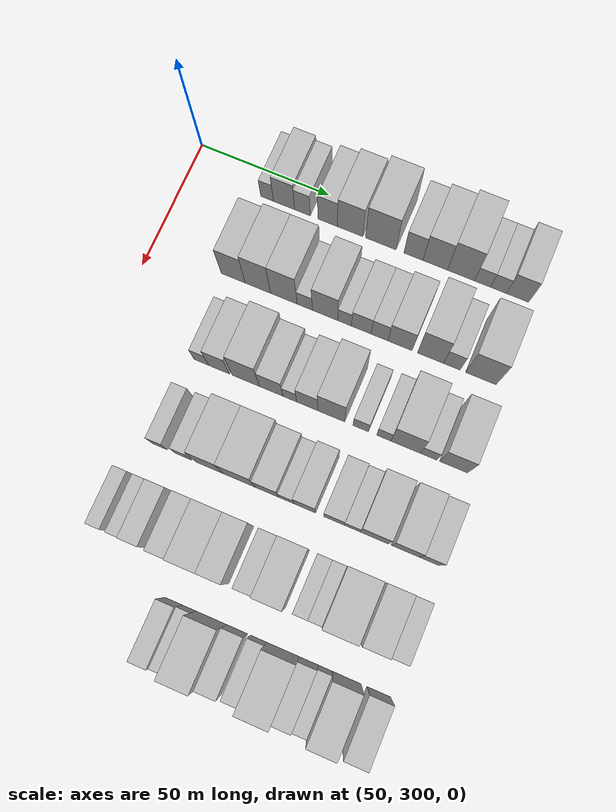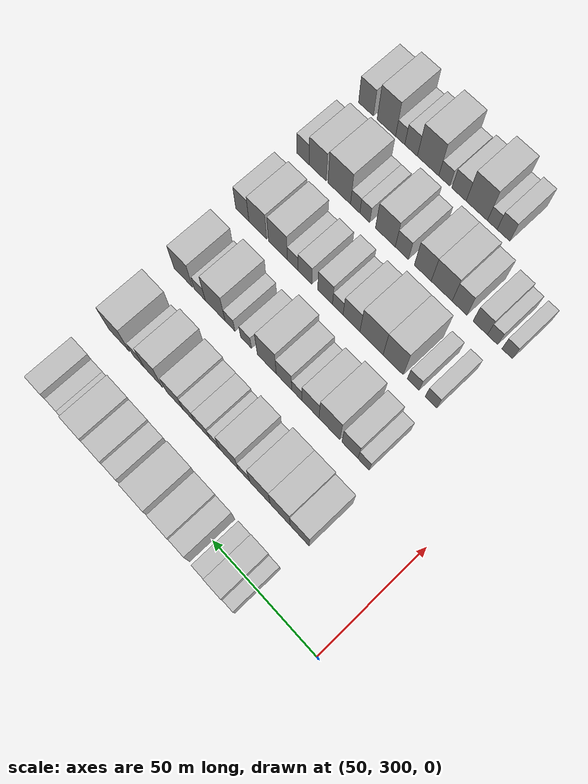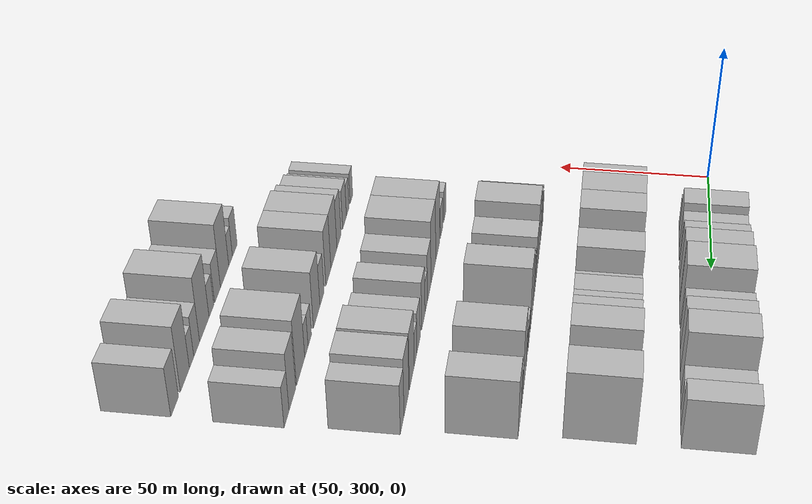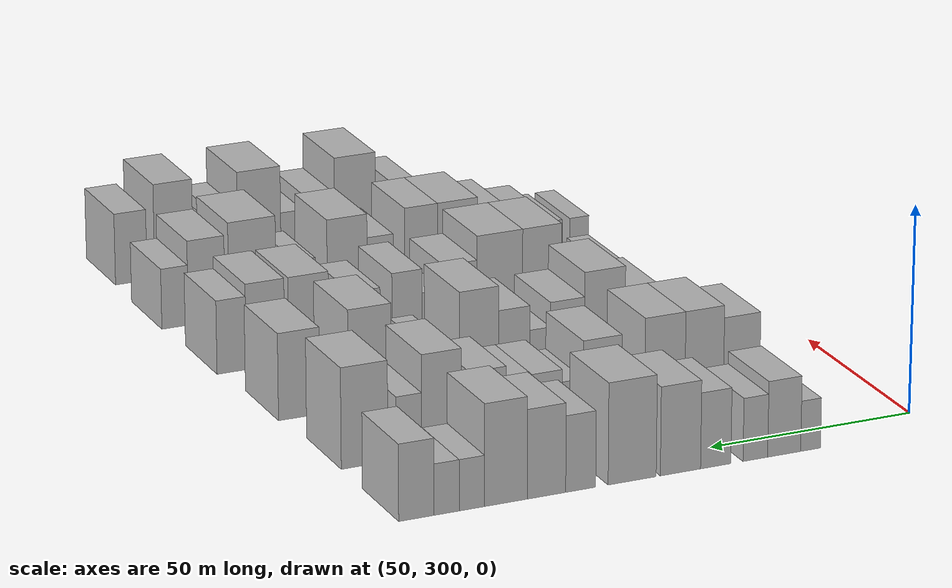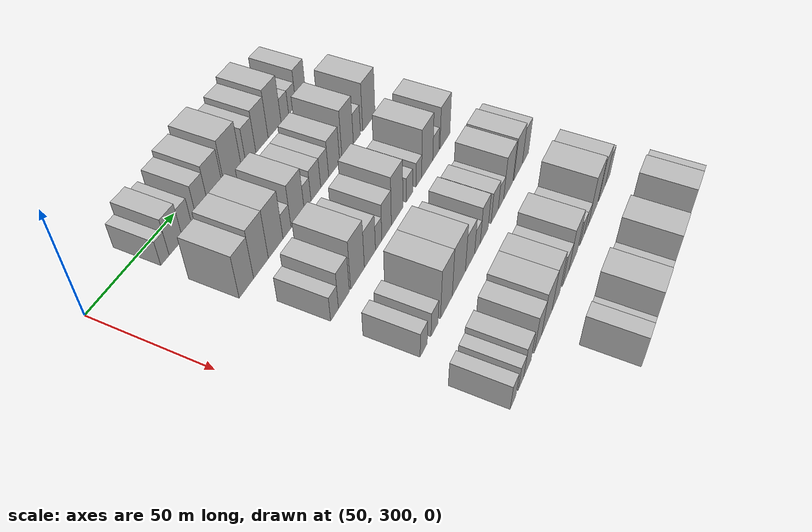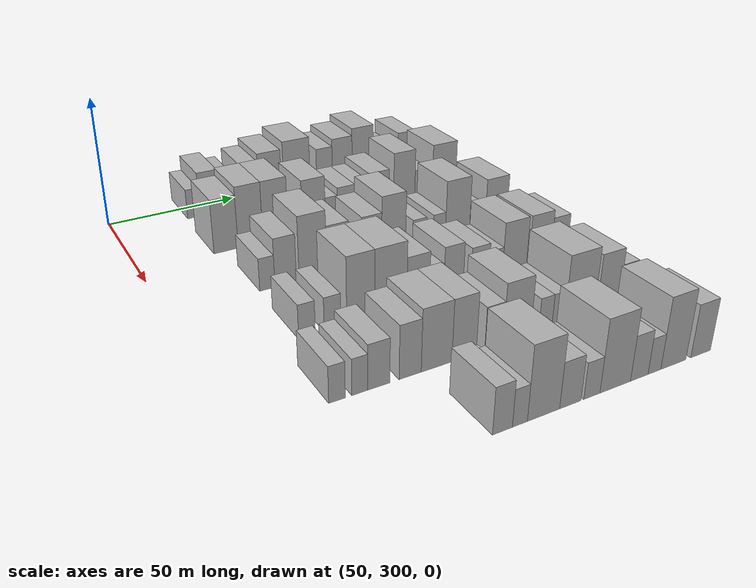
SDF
<sdf version="1.6">
 <world name="default">
  <model name="building_97">
   <static>1</static>
   <pose>50.0000 330.2632 0 0.000000 0.000000 0.000000</pose>
   <link name="link">
    <pose>0 0 6.00 0 0 0</pose>
    <collision name="collision"><geometry><box><size>20.0000 4.9394 12.0000</size></box></geometry></collision>
    <visual name="visual">
     <cast_shadows>0</cast_shadows>
     <geometry><box><size>20.0000 4.9394 12.0000</size></box></geometry>
     <material>
      <script>
       <uri>model://HANNAS_wall/materials/scripts</uri>
       <uri>model://HANNAS_wall/materials/textures</uri>
       <name>vrc/HANNAS_wall</name>
      </script>
     </material>
    </visual>
   </link>
  </model>
  <model name="building_98">
   <static>1</static>
   <pose>50.0000 336.8255 0 0.000000 0.000000 0.000000</pose>
   <link name="link">
    <pose>0 0 9.00 0 0 0</pose>
    <collision name="collision"><geometry><box><size>20.0000 8.1850 18.0000</size></box></geometry></collision>
    <visual name="visual">
     <cast_shadows>0</cast_shadows>
     <geometry><box><size>20.0000 8.1850 18.0000</size></box></geometry>
     <material>
      <script>
       <uri>model://HANNAS_wall/materials/scripts</uri>
       <uri>model://HANNAS_wall/materials/textures</uri>
       <name>vrc/HANNAS_wall</name>
      </script>
     </material>
    </visual>
   </link>
  </model>
  <model name="building_99">
   <static>1</static>
   <pose>50.0000 343.9615 0 0.000000 0.000000 0.000000</pose>
   <link name="link">
    <pose>0 0 7.50 0 0 0</pose>
    <collision name="collision"><geometry><box><size>20.0000 6.0871 15.0000</size></box></geometry></collision>
    <visual name="visual">
     <cast_shadows>0</cast_shadows>
     <geometry><box><size>20.0000 6.0871 15.0000</size></box></geometry>
     <material>
      <script>
       <uri>model://HANNAS_wall/materials/scripts</uri>
       <uri>model://HANNAS_wall/materials/textures</uri>
       <name>vrc/HANNAS_wall</name>
      </script>
     </material>
    </visual>
   </link>
  </model>
  <model name="building_100">
   <static>1</static>
   <pose>50.0000 353.7183 0 0.000000 0.000000 0.000000</pose>
   <link name="link">
    <pose>0 0 9.00 0 0 0</pose>
    <collision name="collision"><geometry><box><size>20.0000 7.4264 18.0000</size></box></geometry></collision>
    <visual name="visual">
     <cast_shadows>0</cast_shadows>
     <geometry><box><size>20.0000 7.4264 18.0000</size></box></geometry>
     <material>
      <script>
       <uri>model://HANNAS_wall/materials/scripts</uri>
       <uri>model://HANNAS_wall/materials/textures</uri>
       <name>vrc/HANNAS_wall</name>
      </script>
     </material>
    </visual>
   </link>
  </model>
  <model name="building_101">
   <static>1</static>
   <pose>50.0000 362.3432 0 0.000000 0.000000 0.000000</pose>
   <link name="link">
    <pose>0 0 10.50 0 0 0</pose>
    <collision name="collision"><geometry><box><size>20.0000 9.8235 21.0000</size></box></geometry></collision>
    <visual name="visual">
     <cast_shadows>0</cast_shadows>
     <geometry><box><size>20.0000 9.8235 21.0000</size></box></geometry>
     <material>
      <script>
       <uri>model://HANNAS_wall/materials/scripts</uri>
       <uri>model://HANNAS_wall/materials/textures</uri>
       <name>vrc/HANNAS_wall</name>
      </script>
     </material>
    </visual>
   </link>
  </model>
  <model name="building_102">
   <static>1</static>
   <pose>50.0000 374.0817 0 0.000000 0.000000 0.000000</pose>
   <link name="link">
    <pose>0 0 12.00 0 0 0</pose>
    <collision name="collision"><geometry><box><size>20.0000 11.6535 24.0000</size></box></geometry></collision>
    <visual name="visual">
     <cast_shadows>0</cast_shadows>
     <geometry><box><size>20.0000 11.6535 24.0000</size></box></geometry>
     <material>
      <script>
       <uri>model://HANNAS_wall/materials/scripts</uri>
       <uri>model://HANNAS_wall/materials/textures</uri>
       <name>vrc/HANNAS_wall</name>
      </script>
     </material>
    </visual>
   </link>
  </model>
  <model name="building_103">
   <static>1</static>
   <pose>50.0000 386.5109 0 0.000000 0.000000 0.000000</pose>
   <link name="link">
    <pose>0 0 9.00 0 0 0</pose>
    <collision name="collision"><geometry><box><size>20.0000 7.2047 18.0000</size></box></geometry></collision>
    <visual name="visual">
     <cast_shadows>0</cast_shadows>
     <geometry><box><size>20.0000 7.2047 18.0000</size></box></geometry>
     <material>
      <script>
       <uri>model://HANNAS_wall/materials/scripts</uri>
       <uri>model://HANNAS_wall/materials/textures</uri>
       <name>vrc/HANNAS_wall</name>
      </script>
     </material>
    </visual>
   </link>
  </model>
  <model name="building_104">
   <static>1</static>
   <pose>50.0000 394.7167 0 0.000000 0.000000 0.000000</pose>
   <link name="link">
    <pose>0 0 10.50 0 0 0</pose>
    <collision name="collision"><geometry><box><size>20.0000 9.2070 21.0000</size></box></geometry></collision>
    <visual name="visual">
     <cast_shadows>0</cast_shadows>
     <geometry><box><size>20.0000 9.2070 21.0000</size></box></geometry>
     <material>
      <script>
       <uri>model://HANNAS_wall/materials/scripts</uri>
       <uri>model://HANNAS_wall/materials/textures</uri>
       <name>vrc/HANNAS_wall</name>
      </script>
     </material>
    </visual>
   </link>
  </model>
  <model name="building_105">
   <static>1</static>
   <pose>50.0000 404.3875 0 0.000000 0.000000 0.000000</pose>
   <link name="link">
    <pose>0 0 12.00 0 0 0</pose>
    <collision name="collision"><geometry><box><size>20.0000 10.1346 24.0000</size></box></geometry></collision>
    <visual name="visual">
     <cast_shadows>0</cast_shadows>
     <geometry><box><size>20.0000 10.1346 24.0000</size></box></geometry>
     <material>
      <script>
       <uri>model://HANNAS_wall/materials/scripts</uri>
       <uri>model://HANNAS_wall/materials/textures</uri>
       <name>vrc/HANNAS_wall</name>
      </script>
     </material>
    </visual>
   </link>
  </model>
  <model name="building_106">
   <static>1</static>
   <pose>50.0000 412.4479 0 0.000000 0.000000 0.000000</pose>
   <link name="link">
    <pose>0 0 6.00 0 0 0</pose>
    <collision name="collision"><geometry><box><size>20.0000 5.9863 12.0000</size></box></geometry></collision>
    <visual name="visual">
     <cast_shadows>0</cast_shadows>
     <geometry><box><size>20.0000 5.9863 12.0000</size></box></geometry>
     <material>
      <script>
       <uri>model://HANNAS_wall/materials/scripts</uri>
       <uri>model://HANNAS_wall/materials/textures</uri>
       <name>vrc/HANNAS_wall</name>
      </script>
     </material>
    </visual>
   </link>
  </model>
  <model name="building_107">
   <static>1</static>
   <pose>50.0000 418.4116 0 0.000000 0.000000 0.000000</pose>
   <link name="link">
    <pose>0 0 6.00 0 0 0</pose>
    <collision name="collision"><geometry><box><size>20.0000 5.9411 12.0000</size></box></geometry></collision>
    <visual name="visual">
     <cast_shadows>0</cast_shadows>
     <geometry><box><size>20.0000 5.9411 12.0000</size></box></geometry>
     <material>
      <script>
       <uri>model://HANNAS_wall/materials/scripts</uri>
       <uri>model://HANNAS_wall/materials/textures</uri>
       <name>vrc/HANNAS_wall</name>
      </script>
     </material>
    </visual>
   </link>
  </model>
  <model name="building_108">
   <static>1</static>
   <pose>50.0000 425.5411 0 0.000000 0.000000 0.000000</pose>
   <link name="link">
    <pose>0 0 9.00 0 0 0</pose>
    <collision name="collision"><geometry><box><size>20.0000 8.3180 18.0000</size></box></geometry></collision>
    <visual name="visual">
     <cast_shadows>0</cast_shadows>
     <geometry><box><size>20.0000 8.3180 18.0000</size></box></geometry>
     <material>
      <script>
       <uri>model://HANNAS_wall/materials/scripts</uri>
       <uri>model://HANNAS_wall/materials/textures</uri>
       <name>vrc/HANNAS_wall</name>
      </script>
     </material>
    </visual>
   </link>
  </model>
  <model name="building_219">
   <static>1</static>
   <pose>82.0000 331.4247 0 0.000000 0.000000 0.000000</pose>
   <link name="link">
    <pose>0 0 10.50 0 0 0</pose>
    <collision name="collision"><geometry><box><size>20.0000 9.1639 21.0000</size></box></geometry></collision>
    <visual name="visual">
     <cast_shadows>0</cast_shadows>
     <geometry><box><size>20.0000 9.1639 21.0000</size></box></geometry>
     <material>
      <script>
       <uri>model://HANNAS_wall/materials/scripts</uri>
       <uri>model://HANNAS_wall/materials/textures</uri>
       <name>vrc/HANNAS_wall</name>
      </script>
     </material>
    </visual>
   </link>
  </model>
  <model name="building_220">
   <static>1</static>
   <pose>82.0000 340.8508 0 0.000000 0.000000 0.000000</pose>
   <link name="link">
    <pose>0 0 12.00 0 0 0</pose>
    <collision name="collision"><geometry><box><size>20.0000 9.6883 24.0000</size></box></geometry></collision>
    <visual name="visual">
     <cast_shadows>0</cast_shadows>
     <geometry><box><size>20.0000 9.6883 24.0000</size></box></geometry>
     <material>
      <script>
       <uri>model://HANNAS_wall/materials/scripts</uri>
       <uri>model://HANNAS_wall/materials/textures</uri>
       <name>vrc/HANNAS_wall</name>
      </script>
     </material>
    </visual>
   </link>
  </model>
  <model name="building_221">
   <static>1</static>
   <pose>82.0000 350.7126 0 0.000000 0.000000 0.000000</pose>
   <link name="link">
    <pose>0 0 12.00 0 0 0</pose>
    <collision name="collision"><geometry><box><size>20.0000 10.0352 24.0000</size></box></geometry></collision>
    <visual name="visual">
     <cast_shadows>0</cast_shadows>
     <geometry><box><size>20.0000 10.0352 24.0000</size></box></geometry>
     <material>
      <script>
       <uri>model://HANNAS_wall/materials/scripts</uri>
       <uri>model://HANNAS_wall/materials/textures</uri>
       <name>vrc/HANNAS_wall</name>
      </script>
     </material>
    </visual>
   </link>
  </model>
  <model name="building_222">
   <static>1</static>
   <pose>82.0000 358.6106 0 0.000000 0.000000 0.000000</pose>
   <link name="link">
    <pose>0 0 6.00 0 0 0</pose>
    <collision name="collision"><geometry><box><size>20.0000 5.7609 12.0000</size></box></geometry></collision>
    <visual name="visual">
     <cast_shadows>0</cast_shadows>
     <geometry><box><size>20.0000 5.7609 12.0000</size></box></geometry>
     <material>
      <script>
       <uri>model://HANNAS_wall/materials/scripts</uri>
       <uri>model://HANNAS_wall/materials/textures</uri>
       <name>vrc/HANNAS_wall</name>
      </script>
     </material>
    </visual>
   </link>
  </model>
  <model name="building_223">
   <static>1</static>
   <pose>82.0000 366.2642 0 0.000000 0.000000 0.000000</pose>
   <link name="link">
    <pose>0 0 10.50 0 0 0</pose>
    <collision name="collision"><geometry><box><size>20.0000 9.5462 21.0000</size></box></geometry></collision>
    <visual name="visual">
     <cast_shadows>0</cast_shadows>
     <geometry><box><size>20.0000 9.5462 21.0000</size></box></geometry>
     <material>
      <script>
       <uri>model://HANNAS_wall/materials/scripts</uri>
       <uri>model://HANNAS_wall/materials/textures</uri>
       <name>vrc/HANNAS_wall</name>
      </script>
     </material>
    </visual>
   </link>
  </model>
  <model name="building_224">
   <static>1</static>
   <pose>82.0000 373.6003 0 0.000000 0.000000 0.000000</pose>
   <link name="link">
    <pose>0 0 6.00 0 0 0</pose>
    <collision name="collision"><geometry><box><size>20.0000 5.1261 12.0000</size></box></geometry></collision>
    <visual name="visual">
     <cast_shadows>0</cast_shadows>
     <geometry><box><size>20.0000 5.1261 12.0000</size></box></geometry>
     <material>
      <script>
       <uri>model://HANNAS_wall/materials/scripts</uri>
       <uri>model://HANNAS_wall/materials/textures</uri>
       <name>vrc/HANNAS_wall</name>
      </script>
     </material>
    </visual>
   </link>
  </model>
  <model name="building_225">
   <static>1</static>
   <pose>82.0000 379.8833 0 0.000000 0.000000 0.000000</pose>
   <link name="link">
    <pose>0 0 7.50 0 0 0</pose>
    <collision name="collision"><geometry><box><size>20.0000 7.4398 15.0000</size></box></geometry></collision>
    <visual name="visual">
     <cast_shadows>0</cast_shadows>
     <geometry><box><size>20.0000 7.4398 15.0000</size></box></geometry>
     <material>
      <script>
       <uri>model://HANNAS_wall/materials/scripts</uri>
       <uri>model://HANNAS_wall/materials/textures</uri>
       <name>vrc/HANNAS_wall</name>
      </script>
     </material>
    </visual>
   </link>
  </model>
  <model name="building_226">
   <static>1</static>
   <pose>82.0000 386.7395 0 0.000000 0.000000 0.000000</pose>
   <link name="link">
    <pose>0 0 7.50 0 0 0</pose>
    <collision name="collision"><geometry><box><size>20.0000 6.2728 15.0000</size></box></geometry></collision>
    <visual name="visual">
     <cast_shadows>0</cast_shadows>
     <geometry><box><size>20.0000 6.2728 15.0000</size></box></geometry>
     <material>
      <script>
       <uri>model://HANNAS_wall/materials/scripts</uri>
       <uri>model://HANNAS_wall/materials/textures</uri>
       <name>vrc/HANNAS_wall</name>
      </script>
     </material>
    </visual>
   </link>
  </model>
  <model name="building_227">
   <static>1</static>
   <pose>82.0000 394.3272 0 0.000000 0.000000 0.000000</pose>
   <link name="link">
    <pose>0 0 9.00 0 0 0</pose>
    <collision name="collision"><geometry><box><size>20.0000 8.9026 18.0000</size></box></geometry></collision>
    <visual name="visual">
     <cast_shadows>0</cast_shadows>
     <geometry><box><size>20.0000 8.9026 18.0000</size></box></geometry>
     <material>
      <script>
       <uri>model://HANNAS_wall/materials/scripts</uri>
       <uri>model://HANNAS_wall/materials/textures</uri>
       <name>vrc/HANNAS_wall</name>
      </script>
     </material>
    </visual>
   </link>
  </model>
  <model name="building_228">
   <static>1</static>
   <pose>82.0000 405.5802 0 0.000000 0.000000 0.000000</pose>
   <link name="link">
    <pose>0 0 12.00 0 0 0</pose>
    <collision name="collision"><geometry><box><size>20.0000 9.6034 24.0000</size></box></geometry></collision>
    <visual name="visual">
     <cast_shadows>0</cast_shadows>
     <geometry><box><size>20.0000 9.6034 24.0000</size></box></geometry>
     <material>
      <script>
       <uri>model://HANNAS_wall/materials/scripts</uri>
       <uri>model://HANNAS_wall/materials/textures</uri>
       <name>vrc/HANNAS_wall</name>
      </script>
     </material>
    </visual>
   </link>
  </model>
  <model name="building_229">
   <static>1</static>
   <pose>82.0000 413.4512 0 0.000000 0.000000 0.000000</pose>
   <link name="link">
    <pose>0 0 7.50 0 0 0</pose>
    <collision name="collision"><geometry><box><size>20.0000 6.1387 15.0000</size></box></geometry></collision>
    <visual name="visual">
     <cast_shadows>0</cast_shadows>
     <geometry><box><size>20.0000 6.1387 15.0000</size></box></geometry>
     <material>
      <script>
       <uri>model://HANNAS_wall/materials/scripts</uri>
       <uri>model://HANNAS_wall/materials/textures</uri>
       <name>vrc/HANNAS_wall</name>
      </script>
     </material>
    </visual>
   </link>
  </model>
  <model name="building_230">
   <static>1</static>
   <pose>82.0000 424.0922 0 0.000000 0.000000 0.000000</pose>
   <link name="link">
    <pose>0 0 12.00 0 0 0</pose>
    <collision name="collision"><geometry><box><size>20.0000 11.1432 24.0000</size></box></geometry></collision>
    <visual name="visual">
     <cast_shadows>0</cast_shadows>
     <geometry><box><size>20.0000 11.1432 24.0000</size></box></geometry>
     <material>
      <script>
       <uri>model://HANNAS_wall/materials/scripts</uri>
       <uri>model://HANNAS_wall/materials/textures</uri>
       <name>vrc/HANNAS_wall</name>
      </script>
     </material>
    </visual>
   </link>
  </model>
  <model name="building_335">
   <static>1</static>
   <pose>114.0000 333.8710 0 0.000000 0.000000 0.000000</pose>
   <link name="link">
    <pose>0 0 6.00 0 0 0</pose>
    <collision name="collision"><geometry><box><size>20.0000 5.4527 12.0000</size></box></geometry></collision>
    <visual name="visual">
     <cast_shadows>0</cast_shadows>
     <geometry><box><size>20.0000 5.4527 12.0000</size></box></geometry>
     <material>
      <script>
       <uri>model://HANNAS_wall/materials/scripts</uri>
       <uri>model://HANNAS_wall/materials/textures</uri>
       <name>vrc/HANNAS_wall</name>
      </script>
     </material>
    </visual>
   </link>
  </model>
  <model name="building_336">
   <static>1</static>
   <pose>114.0000 340.5086 0 0.000000 0.000000 0.000000</pose>
   <link name="link">
    <pose>0 0 9.00 0 0 0</pose>
    <collision name="collision"><geometry><box><size>20.0000 7.8223 18.0000</size></box></geometry></collision>
    <visual name="visual">
     <cast_shadows>0</cast_shadows>
     <geometry><box><size>20.0000 7.8223 18.0000</size></box></geometry>
     <material>
      <script>
       <uri>model://HANNAS_wall/materials/scripts</uri>
       <uri>model://HANNAS_wall/materials/textures</uri>
       <name>vrc/HANNAS_wall</name>
      </script>
     </material>
    </visual>
   </link>
  </model>
  <model name="building_337">
   <static>1</static>
   <pose>114.0000 350.5650 0 0.000000 0.000000 0.000000</pose>
   <link name="link">
    <pose>0 0 12.00 0 0 0</pose>
    <collision name="collision"><geometry><box><size>20.0000 10.2907 24.0000</size></box></geometry></collision>
    <visual name="visual">
     <cast_shadows>0</cast_shadows>
     <geometry><box><size>20.0000 10.2907 24.0000</size></box></geometry>
     <material>
      <script>
       <uri>model://HANNAS_wall/materials/scripts</uri>
       <uri>model://HANNAS_wall/materials/textures</uri>
       <name>vrc/HANNAS_wall</name>
      </script>
     </material>
    </visual>
   </link>
  </model>
  <model name="building_338">
   <static>1</static>
   <pose>114.0000 360.0270 0 0.000000 0.000000 0.000000</pose>
   <link name="link">
    <pose>0 0 9.00 0 0 0</pose>
    <collision name="collision"><geometry><box><size>20.0000 8.6332 18.0000</size></box></geometry></collision>
    <visual name="visual">
     <cast_shadows>0</cast_shadows>
     <geometry><box><size>20.0000 8.6332 18.0000</size></box></geometry>
     <material>
      <script>
       <uri>model://HANNAS_wall/materials/scripts</uri>
       <uri>model://HANNAS_wall/materials/textures</uri>
       <name>vrc/HANNAS_wall</name>
      </script>
     </material>
    </visual>
   </link>
  </model>
  <model name="building_339">
   <static>1</static>
   <pose>114.0000 366.8985 0 0.000000 0.000000 0.000000</pose>
   <link name="link">
    <pose>0 0 6.00 0 0 0</pose>
    <collision name="collision"><geometry><box><size>20.0000 5.1098 12.0000</size></box></geometry></collision>
    <visual name="visual">
     <cast_shadows>0</cast_shadows>
     <geometry><box><size>20.0000 5.1098 12.0000</size></box></geometry>
     <material>
      <script>
       <uri>model://HANNAS_wall/materials/scripts</uri>
       <uri>model://HANNAS_wall/materials/textures</uri>
       <name>vrc/HANNAS_wall</name>
      </script>
     </material>
    </visual>
   </link>
  </model>
  <model name="building_340">
   <static>1</static>
   <pose>114.0000 373.3705 0 0.000000 0.000000 0.000000</pose>
   <link name="link">
    <pose>0 0 9.00 0 0 0</pose>
    <collision name="collision"><geometry><box><size>20.0000 7.8342 18.0000</size></box></geometry></collision>
    <visual name="visual">
     <cast_shadows>0</cast_shadows>
     <geometry><box><size>20.0000 7.8342 18.0000</size></box></geometry>
     <material>
      <script>
       <uri>model://HANNAS_wall/materials/scripts</uri>
       <uri>model://HANNAS_wall/materials/textures</uri>
       <name>vrc/HANNAS_wall</name>
      </script>
     </material>
    </visual>
   </link>
  </model>
  <model name="building_341">
   <static>1</static>
   <pose>114.0000 382.1843 0 0.000000 0.000000 0.000000</pose>
   <link name="link">
    <pose>0 0 12.00 0 0 0</pose>
    <collision name="collision"><geometry><box><size>20.0000 9.7934 24.0000</size></box></geometry></collision>
    <visual name="visual">
     <cast_shadows>0</cast_shadows>
     <geometry><box><size>20.0000 9.7934 24.0000</size></box></geometry>
     <material>
      <script>
       <uri>model://HANNAS_wall/materials/scripts</uri>
       <uri>model://HANNAS_wall/materials/textures</uri>
       <name>vrc/HANNAS_wall</name>
      </script>
     </material>
    </visual>
   </link>
  </model>
  <model name="building_342">
   <static>1</static>
   <pose>114.0000 392.9082 0 0.000000 0.000000 0.000000</pose>
   <link name="link">
    <pose>0 0 6.00 0 0 0</pose>
    <collision name="collision"><geometry><box><size>20.0000 5.6544 12.0000</size></box></geometry></collision>
    <visual name="visual">
     <cast_shadows>0</cast_shadows>
     <geometry><box><size>20.0000 5.6544 12.0000</size></box></geometry>
     <material>
      <script>
       <uri>model://HANNAS_wall/materials/scripts</uri>
       <uri>model://HANNAS_wall/materials/textures</uri>
       <name>vrc/HANNAS_wall</name>
      </script>
     </material>
    </visual>
   </link>
  </model>
  <model name="building_343">
   <static>1</static>
   <pose>114.0000 401.3353 0 0.000000 0.000000 0.000000</pose>
   <link name="link">
    <pose>0 0 6.00 0 0 0</pose>
    <collision name="collision"><geometry><box><size>20.0000 5.1997 12.0000</size></box></geometry></collision>
    <visual name="visual">
     <cast_shadows>0</cast_shadows>
     <geometry><box><size>20.0000 5.1997 12.0000</size></box></geometry>
     <material>
      <script>
       <uri>model://HANNAS_wall/materials/scripts</uri>
       <uri>model://HANNAS_wall/materials/textures</uri>
       <name>vrc/HANNAS_wall</name>
      </script>
     </material>
    </visual>
   </link>
  </model>
  <model name="building_344">
   <static>1</static>
   <pose>114.0000 409.2356 0 0.000000 0.000000 0.000000</pose>
   <link name="link">
    <pose>0 0 12.00 0 0 0</pose>
    <collision name="collision"><geometry><box><size>20.0000 10.6009 24.0000</size></box></geometry></collision>
    <visual name="visual">
     <cast_shadows>0</cast_shadows>
     <geometry><box><size>20.0000 10.6009 24.0000</size></box></geometry>
     <material>
      <script>
       <uri>model://HANNAS_wall/materials/scripts</uri>
       <uri>model://HANNAS_wall/materials/textures</uri>
       <name>vrc/HANNAS_wall</name>
      </script>
     </material>
    </visual>
   </link>
  </model>
  <model name="building_345">
   <static>1</static>
   <pose>114.0000 417.5212 0 0.000000 0.000000 0.000000</pose>
   <link name="link">
    <pose>0 0 6.00 0 0 0</pose>
    <collision name="collision"><geometry><box><size>20.0000 5.9703 12.0000</size></box></geometry></collision>
    <visual name="visual">
     <cast_shadows>0</cast_shadows>
     <geometry><box><size>20.0000 5.9703 12.0000</size></box></geometry>
     <material>
      <script>
       <uri>model://HANNAS_wall/materials/scripts</uri>
       <uri>model://HANNAS_wall/materials/textures</uri>
       <name>vrc/HANNAS_wall</name>
      </script>
     </material>
    </visual>
   </link>
  </model>
  <model name="building_346">
   <static>1</static>
   <pose>114.0000 426.5282 0 0.000000 0.000000 0.000000</pose>
   <link name="link">
    <pose>0 0 10.50 0 0 0</pose>
    <collision name="collision"><geometry><box><size>20.0000 10.0437 21.0000</size></box></geometry></collision>
    <visual name="visual">
     <cast_shadows>0</cast_shadows>
     <geometry><box><size>20.0000 10.0437 21.0000</size></box></geometry>
     <material>
      <script>
       <uri>model://HANNAS_wall/materials/scripts</uri>
       <uri>model://HANNAS_wall/materials/textures</uri>
       <name>vrc/HANNAS_wall</name>
      </script>
     </material>
    </visual>
   </link>
  </model>
  <model name="building_445">
   <static>1</static>
   <pose>146.0000 333.2795 0 0.000000 0.000000 0.000000</pose>
   <link name="link">
    <pose>0 0 6.00 0 0 0</pose>
    <collision name="collision"><geometry><box><size>20.0000 5.5767 12.0000</size></box></geometry></collision>
    <visual name="visual">
     <cast_shadows>0</cast_shadows>
     <geometry><box><size>20.0000 5.5767 12.0000</size></box></geometry>
     <material>
      <script>
       <uri>model://HANNAS_wall/materials/scripts</uri>
       <uri>model://HANNAS_wall/materials/textures</uri>
       <name>vrc/HANNAS_wall</name>
      </script>
     </material>
    </visual>
   </link>
  </model>
  <model name="building_446">
   <static>1</static>
   <pose>146.0000 341.9336 0 0.000000 0.000000 0.000000</pose>
   <link name="link">
    <pose>0 0 6.00 0 0 0</pose>
    <collision name="collision"><geometry><box><size>20.0000 5.7315 12.0000</size></box></geometry></collision>
    <visual name="visual">
     <cast_shadows>0</cast_shadows>
     <geometry><box><size>20.0000 5.7315 12.0000</size></box></geometry>
     <material>
      <script>
       <uri>model://HANNAS_wall/materials/scripts</uri>
       <uri>model://HANNAS_wall/materials/textures</uri>
       <name>vrc/HANNAS_wall</name>
      </script>
     </material>
    </visual>
   </link>
  </model>
  <model name="building_447">
   <static>1</static>
   <pose>146.0000 351.7848 0 0.000000 0.000000 0.000000</pose>
   <link name="link">
    <pose>0 0 12.00 0 0 0</pose>
    <collision name="collision"><geometry><box><size>20.0000 9.9709 24.0000</size></box></geometry></collision>
    <visual name="visual">
     <cast_shadows>0</cast_shadows>
     <geometry><box><size>20.0000 9.9709 24.0000</size></box></geometry>
     <material>
      <script>
       <uri>model://HANNAS_wall/materials/scripts</uri>
       <uri>model://HANNAS_wall/materials/textures</uri>
       <name>vrc/HANNAS_wall</name>
      </script>
     </material>
    </visual>
   </link>
  </model>
  <model name="building_448">
   <static>1</static>
   <pose>146.0000 362.5867 0 0.000000 0.000000 0.000000</pose>
   <link name="link">
    <pose>0 0 12.00 0 0 0</pose>
    <collision name="collision"><geometry><box><size>20.0000 11.6328 24.0000</size></box></geometry></collision>
    <visual name="visual">
     <cast_shadows>0</cast_shadows>
     <geometry><box><size>20.0000 11.6328 24.0000</size></box></geometry>
     <material>
      <script>
       <uri>model://HANNAS_wall/materials/scripts</uri>
       <uri>model://HANNAS_wall/materials/textures</uri>
       <name>vrc/HANNAS_wall</name>
      </script>
     </material>
    </visual>
   </link>
  </model>
  <model name="building_449">
   <static>1</static>
   <pose>146.0000 372.6739 0 0.000000 0.000000 0.000000</pose>
   <link name="link">
    <pose>0 0 9.00 0 0 0</pose>
    <collision name="collision"><geometry><box><size>20.0000 8.5417 18.0000</size></box></geometry></collision>
    <visual name="visual">
     <cast_shadows>0</cast_shadows>
     <geometry><box><size>20.0000 8.5417 18.0000</size></box></geometry>
     <material>
      <script>
       <uri>model://HANNAS_wall/materials/scripts</uri>
       <uri>model://HANNAS_wall/materials/textures</uri>
       <name>vrc/HANNAS_wall</name>
      </script>
     </material>
    </visual>
   </link>
  </model>
  <model name="building_450">
   <static>1</static>
   <pose>146.0000 379.6721 0 0.000000 0.000000 0.000000</pose>
   <link name="link">
    <pose>0 0 6.00 0 0 0</pose>
    <collision name="collision"><geometry><box><size>20.0000 5.4545 12.0000</size></box></geometry></collision>
    <visual name="visual">
     <cast_shadows>0</cast_shadows>
     <geometry><box><size>20.0000 5.4545 12.0000</size></box></geometry>
     <material>
      <script>
       <uri>model://HANNAS_wall/materials/scripts</uri>
       <uri>model://HANNAS_wall/materials/textures</uri>
       <name>vrc/HANNAS_wall</name>
      </script>
     </material>
    </visual>
   </link>
  </model>
  <model name="building_451">
   <static>1</static>
   <pose>146.0000 386.2233 0 0.000000 0.000000 0.000000</pose>
   <link name="link">
    <pose>0 0 9.00 0 0 0</pose>
    <collision name="collision"><geometry><box><size>20.0000 7.6480 18.0000</size></box></geometry></collision>
    <visual name="visual">
     <cast_shadows>0</cast_shadows>
     <geometry><box><size>20.0000 7.6480 18.0000</size></box></geometry>
     <material>
      <script>
       <uri>model://HANNAS_wall/materials/scripts</uri>
       <uri>model://HANNAS_wall/materials/textures</uri>
       <name>vrc/HANNAS_wall</name>
      </script>
     </material>
    </visual>
   </link>
  </model>
  <model name="building_452">
   <static>1</static>
   <pose>146.0000 396.6845 0 0.000000 0.000000 0.000000</pose>
   <link name="link">
    <pose>0 0 7.50 0 0 0</pose>
    <collision name="collision"><geometry><box><size>20.0000 7.2743 15.0000</size></box></geometry></collision>
    <visual name="visual">
     <cast_shadows>0</cast_shadows>
     <geometry><box><size>20.0000 7.2743 15.0000</size></box></geometry>
     <material>
      <script>
       <uri>model://HANNAS_wall/materials/scripts</uri>
       <uri>model://HANNAS_wall/materials/textures</uri>
       <name>vrc/HANNAS_wall</name>
      </script>
     </material>
    </visual>
   </link>
  </model>
  <model name="building_453">
   <static>1</static>
   <pose>146.0000 403.1363 0 0.000000 0.000000 0.000000</pose>
   <link name="link">
    <pose>0 0 6.00 0 0 0</pose>
    <collision name="collision"><geometry><box><size>20.0000 5.6293 12.0000</size></box></geometry></collision>
    <visual name="visual">
     <cast_shadows>0</cast_shadows>
     <geometry><box><size>20.0000 5.6293 12.0000</size></box></geometry>
     <material>
      <script>
       <uri>model://HANNAS_wall/materials/scripts</uri>
       <uri>model://HANNAS_wall/materials/textures</uri>
       <name>vrc/HANNAS_wall</name>
      </script>
     </material>
    </visual>
   </link>
  </model>
  <model name="building_454">
   <static>1</static>
   <pose>146.0000 410.9639 0 0.000000 0.000000 0.000000</pose>
   <link name="link">
    <pose>0 0 10.50 0 0 0</pose>
    <collision name="collision"><geometry><box><size>20.0000 10.0259 21.0000</size></box></geometry></collision>
    <visual name="visual">
     <cast_shadows>0</cast_shadows>
     <geometry><box><size>20.0000 10.0259 21.0000</size></box></geometry>
     <material>
      <script>
       <uri>model://HANNAS_wall/materials/scripts</uri>
       <uri>model://HANNAS_wall/materials/textures</uri>
       <name>vrc/HANNAS_wall</name>
      </script>
     </material>
    </visual>
   </link>
  </model>
  <model name="building_455">
   <static>1</static>
   <pose>146.0000 421.7540 0 0.000000 0.000000 0.000000</pose>
   <link name="link">
    <pose>0 0 10.50 0 0 0</pose>
    <collision name="collision"><geometry><box><size>20.0000 9.5544 21.0000</size></box></geometry></collision>
    <visual name="visual">
     <cast_shadows>0</cast_shadows>
     <geometry><box><size>20.0000 9.5544 21.0000</size></box></geometry>
     <material>
      <script>
       <uri>model://HANNAS_wall/materials/scripts</uri>
       <uri>model://HANNAS_wall/materials/textures</uri>
       <name>vrc/HANNAS_wall</name>
      </script>
     </material>
    </visual>
   </link>
  </model>
  <model name="building_456">
   <static>1</static>
   <pose>146.0000 430.1408 0 0.000000 0.000000 0.000000</pose>
   <link name="link">
    <pose>0 0 9.00 0 0 0</pose>
    <collision name="collision"><geometry><box><size>20.0000 7.2192 18.0000</size></box></geometry></collision>
    <visual name="visual">
     <cast_shadows>0</cast_shadows>
     <geometry><box><size>20.0000 7.2192 18.0000</size></box></geometry>
     <material>
      <script>
       <uri>model://HANNAS_wall/materials/scripts</uri>
       <uri>model://HANNAS_wall/materials/textures</uri>
       <name>vrc/HANNAS_wall</name>
      </script>
     </material>
    </visual>
   </link>
  </model>
  <model name="building_560">
   <static>1</static>
   <pose>178.0000 327.2048 0 0.000000 0.000000 0.000000</pose>
   <link name="link">
    <pose>0 0 6.00 0 0 0</pose>
    <collision name="collision"><geometry><box><size>20.0000 5.0731 12.0000</size></box></geometry></collision>
    <visual name="visual">
     <cast_shadows>0</cast_shadows>
     <geometry><box><size>20.0000 5.0731 12.0000</size></box></geometry>
     <material>
      <script>
       <uri>model://HANNAS_wall/materials/scripts</uri>
       <uri>model://HANNAS_wall/materials/textures</uri>
       <name>vrc/HANNAS_wall</name>
      </script>
     </material>
    </visual>
   </link>
  </model>
  <model name="building_561">
   <static>1</static>
   <pose>178.0000 334.2353 0 0.000000 0.000000 0.000000</pose>
   <link name="link">
    <pose>0 0 6.00 0 0 0</pose>
    <collision name="collision"><geometry><box><size>20.0000 4.9879 12.0000</size></box></geometry></collision>
    <visual name="visual">
     <cast_shadows>0</cast_shadows>
     <geometry><box><size>20.0000 4.9879 12.0000</size></box></geometry>
     <material>
      <script>
       <uri>model://HANNAS_wall/materials/scripts</uri>
       <uri>model://HANNAS_wall/materials/textures</uri>
       <name>vrc/HANNAS_wall</name>
      </script>
     </material>
    </visual>
   </link>
  </model>
  <model name="building_562">
   <static>1</static>
   <pose>178.0000 340.2366 0 0.000000 0.000000 0.000000</pose>
   <link name="link">
    <pose>0 0 7.50 0 0 0</pose>
    <collision name="collision"><geometry><box><size>20.0000 7.0146 15.0000</size></box></geometry></collision>
    <visual name="visual">
     <cast_shadows>0</cast_shadows>
     <geometry><box><size>20.0000 7.0146 15.0000</size></box></geometry>
     <material>
      <script>
       <uri>model://HANNAS_wall/materials/scripts</uri>
       <uri>model://HANNAS_wall/materials/textures</uri>
       <name>vrc/HANNAS_wall</name>
      </script>
     </material>
    </visual>
   </link>
  </model>
  <model name="building_563">
   <static>1</static>
   <pose>178.0000 350.3879 0 0.000000 0.000000 0.000000</pose>
   <link name="link">
    <pose>0 0 9.00 0 0 0</pose>
    <collision name="collision"><geometry><box><size>20.0000 7.2881 18.0000</size></box></geometry></collision>
    <visual name="visual">
     <cast_shadows>0</cast_shadows>
     <geometry><box><size>20.0000 7.2881 18.0000</size></box></geometry>
     <material>
      <script>
       <uri>model://HANNAS_wall/materials/scripts</uri>
       <uri>model://HANNAS_wall/materials/textures</uri>
       <name>vrc/HANNAS_wall</name>
      </script>
     </material>
    </visual>
   </link>
  </model>
  <model name="building_564">
   <static>1</static>
   <pose>178.0000 359.2637 0 0.000000 0.000000 0.000000</pose>
   <link name="link">
    <pose>0 0 10.50 0 0 0</pose>
    <collision name="collision"><geometry><box><size>20.0000 10.4635 21.0000</size></box></geometry></collision>
    <visual name="visual">
     <cast_shadows>0</cast_shadows>
     <geometry><box><size>20.0000 10.4635 21.0000</size></box></geometry>
     <material>
      <script>
       <uri>model://HANNAS_wall/materials/scripts</uri>
       <uri>model://HANNAS_wall/materials/textures</uri>
       <name>vrc/HANNAS_wall</name>
      </script>
     </material>
    </visual>
   </link>
  </model>
  <model name="building_565">
   <static>1</static>
   <pose>178.0000 368.7567 0 0.000000 0.000000 0.000000</pose>
   <link name="link">
    <pose>0 0 10.50 0 0 0</pose>
    <collision name="collision"><geometry><box><size>20.0000 8.5226 21.0000</size></box></geometry></collision>
    <visual name="visual">
     <cast_shadows>0</cast_shadows>
     <geometry><box><size>20.0000 8.5226 21.0000</size></box></geometry>
     <material>
      <script>
       <uri>model://HANNAS_wall/materials/scripts</uri>
       <uri>model://HANNAS_wall/materials/textures</uri>
       <name>vrc/HANNAS_wall</name>
      </script>
     </material>
    </visual>
   </link>
  </model>
  <model name="building_566">
   <static>1</static>
   <pose>178.0000 379.3780 0 0.000000 0.000000 0.000000</pose>
   <link name="link">
    <pose>0 0 7.50 0 0 0</pose>
    <collision name="collision"><geometry><box><size>20.0000 6.7199 15.0000</size></box></geometry></collision>
    <visual name="visual">
     <cast_shadows>0</cast_shadows>
     <geometry><box><size>20.0000 6.7199 15.0000</size></box></geometry>
     <material>
      <script>
       <uri>model://HANNAS_wall/materials/scripts</uri>
       <uri>model://HANNAS_wall/materials/textures</uri>
       <name>vrc/HANNAS_wall</name>
      </script>
     </material>
    </visual>
   </link>
  </model>
  <model name="building_567">
   <static>1</static>
   <pose>178.0000 387.8772 0 0.000000 0.000000 0.000000</pose>
   <link name="link">
    <pose>0 0 10.50 0 0 0</pose>
    <collision name="collision"><geometry><box><size>20.0000 10.2785 21.0000</size></box></geometry></collision>
    <visual name="visual">
     <cast_shadows>0</cast_shadows>
     <geometry><box><size>20.0000 10.2785 21.0000</size></box></geometry>
     <material>
      <script>
       <uri>model://HANNAS_wall/materials/scripts</uri>
       <uri>model://HANNAS_wall/materials/textures</uri>
       <name>vrc/HANNAS_wall</name>
      </script>
     </material>
    </visual>
   </link>
  </model>
  <model name="building_568">
   <static>1</static>
   <pose>178.0000 398.5952 0 0.000000 0.000000 0.000000</pose>
   <link name="link">
    <pose>0 0 6.00 0 0 0</pose>
    <collision name="collision"><geometry><box><size>20.0000 5.1575 12.0000</size></box></geometry></collision>
    <visual name="visual">
     <cast_shadows>0</cast_shadows>
     <geometry><box><size>20.0000 5.1575 12.0000</size></box></geometry>
     <material>
      <script>
       <uri>model://HANNAS_wall/materials/scripts</uri>
       <uri>model://HANNAS_wall/materials/textures</uri>
       <name>vrc/HANNAS_wall</name>
      </script>
     </material>
    </visual>
   </link>
  </model>
  <model name="building_569">
   <static>1</static>
   <pose>178.0000 403.6314 0 0.000000 0.000000 0.000000</pose>
   <link name="link">
    <pose>0 0 6.00 0 0 0</pose>
    <collision name="collision"><geometry><box><size>20.0000 4.9149 12.0000</size></box></geometry></collision>
    <visual name="visual">
     <cast_shadows>0</cast_shadows>
     <geometry><box><size>20.0000 4.9149 12.0000</size></box></geometry>
     <material>
      <script>
       <uri>model://HANNAS_wall/materials/scripts</uri>
       <uri>model://HANNAS_wall/materials/textures</uri>
       <name>vrc/HANNAS_wall</name>
      </script>
     </material>
    </visual>
   </link>
  </model>
  <model name="building_570">
   <static>1</static>
   <pose>178.0000 412.0835 0 0.000000 0.000000 0.000000</pose>
   <link name="link">
    <pose>0 0 12.00 0 0 0</pose>
    <collision name="collision"><geometry><box><size>20.0000 11.9892 24.0000</size></box></geometry></collision>
    <visual name="visual">
     <cast_shadows>0</cast_shadows>
     <geometry><box><size>20.0000 11.9892 24.0000</size></box></geometry>
     <material>
      <script>
       <uri>model://HANNAS_wall/materials/scripts</uri>
       <uri>model://HANNAS_wall/materials/textures</uri>
       <name>vrc/HANNAS_wall</name>
      </script>
     </material>
    </visual>
   </link>
  </model>
  <model name="building_571">
   <static>1</static>
   <pose>178.0000 423.7132 0 0.000000 0.000000 0.000000</pose>
   <link name="link">
    <pose>0 0 10.50 0 0 0</pose>
    <collision name="collision"><geometry><box><size>20.0000 9.2702 21.0000</size></box></geometry></collision>
    <visual name="visual">
     <cast_shadows>0</cast_shadows>
     <geometry><box><size>20.0000 9.2702 21.0000</size></box></geometry>
     <material>
      <script>
       <uri>model://HANNAS_wall/materials/scripts</uri>
       <uri>model://HANNAS_wall/materials/textures</uri>
       <name>vrc/HANNAS_wall</name>
      </script>
     </material>
    </visual>
   </link>
  </model>
  <model name="building_572">
   <static>1</static>
   <pose>178.0000 431.6799 0 0.000000 0.000000 0.000000</pose>
   <link name="link">
    <pose>0 0 7.50 0 0 0</pose>
    <collision name="collision"><geometry><box><size>20.0000 6.6632 15.0000</size></box></geometry></collision>
    <visual name="visual">
     <cast_shadows>0</cast_shadows>
     <geometry><box><size>20.0000 6.6632 15.0000</size></box></geometry>
     <material>
      <script>
       <uri>model://HANNAS_wall/materials/scripts</uri>
       <uri>model://HANNAS_wall/materials/textures</uri>
       <name>vrc/HANNAS_wall</name>
      </script>
     </material>
    </visual>
   </link>
  </model>
  <model name="building_687">
   <static>1</static>
   <pose>210.0000 358.8892 0 0.000000 0.000000 0.000000</pose>
   <link name="link">
    <pose>0 0 7.50 0 0 0</pose>
    <collision name="collision"><geometry><box><size>20.0000 6.3522 15.0000</size></box></geometry></collision>
    <visual name="visual">
     <cast_shadows>0</cast_shadows>
     <geometry><box><size>20.0000 6.3522 15.0000</size></box></geometry>
     <material>
      <script>
       <uri>model://HANNAS_wall/materials/scripts</uri>
       <uri>model://HANNAS_wall/materials/textures</uri>
       <name>vrc/HANNAS_wall</name>
      </script>
     </material>
    </visual>
   </link>
  </model>
  <model name="building_688">
   <static>1</static>
   <pose>210.0000 364.5025 0 0.000000 0.000000 0.000000</pose>
   <link name="link">
    <pose>0 0 6.00 0 0 0</pose>
    <collision name="collision"><geometry><box><size>20.0000 4.8745 12.0000</size></box></geometry></collision>
    <visual name="visual">
     <cast_shadows>0</cast_shadows>
     <geometry><box><size>20.0000 4.8745 12.0000</size></box></geometry>
     <material>
      <script>
       <uri>model://HANNAS_wall/materials/scripts</uri>
       <uri>model://HANNAS_wall/materials/textures</uri>
       <name>vrc/HANNAS_wall</name>
      </script>
     </material>
    </visual>
   </link>
  </model>
  <model name="building_689">
   <static>1</static>
   <pose>210.0000 372.3335 0 0.000000 0.000000 0.000000</pose>
   <link name="link">
    <pose>0 0 12.00 0 0 0</pose>
    <collision name="collision"><geometry><box><size>20.0000 10.7874 24.0000</size></box></geometry></collision>
    <visual name="visual">
     <cast_shadows>0</cast_shadows>
     <geometry><box><size>20.0000 10.7874 24.0000</size></box></geometry>
     <material>
      <script>
       <uri>model://HANNAS_wall/materials/scripts</uri>
       <uri>model://HANNAS_wall/materials/textures</uri>
       <name>vrc/HANNAS_wall</name>
      </script>
     </material>
    </visual>
   </link>
  </model>
  <model name="building_690">
   <static>1</static>
   <pose>210.0000 381.4119 0 0.000000 0.000000 0.000000</pose>
   <link name="link">
    <pose>0 0 7.50 0 0 0</pose>
    <collision name="collision"><geometry><box><size>20.0000 7.3695 15.0000</size></box></geometry></collision>
    <visual name="visual">
     <cast_shadows>0</cast_shadows>
     <geometry><box><size>20.0000 7.3695 15.0000</size></box></geometry>
     <material>
      <script>
       <uri>model://HANNAS_wall/materials/scripts</uri>
       <uri>model://HANNAS_wall/materials/textures</uri>
       <name>vrc/HANNAS_wall</name>
      </script>
     </material>
    </visual>
   </link>
  </model>
  <model name="building_691">
   <static>1</static>
   <pose>210.0000 388.9736 0 0.000000 0.000000 0.000000</pose>
   <link name="link">
    <pose>0 0 6.00 0 0 0</pose>
    <collision name="collision"><geometry><box><size>20.0000 5.7538 12.0000</size></box></geometry></collision>
    <visual name="visual">
     <cast_shadows>0</cast_shadows>
     <geometry><box><size>20.0000 5.7538 12.0000</size></box></geometry>
     <material>
      <script>
       <uri>model://HANNAS_wall/materials/scripts</uri>
       <uri>model://HANNAS_wall/materials/textures</uri>
       <name>vrc/HANNAS_wall</name>
      </script>
     </material>
    </visual>
   </link>
  </model>
  <model name="building_692">
   <static>1</static>
   <pose>210.0000 397.4493 0 0.000000 0.000000 0.000000</pose>
   <link name="link">
    <pose>0 0 12.00 0 0 0</pose>
    <collision name="collision"><geometry><box><size>20.0000 11.1975 24.0000</size></box></geometry></collision>
    <visual name="visual">
     <cast_shadows>0</cast_shadows>
     <geometry><box><size>20.0000 11.1975 24.0000</size></box></geometry>
     <material>
      <script>
       <uri>model://HANNAS_wall/materials/scripts</uri>
       <uri>model://HANNAS_wall/materials/textures</uri>
       <name>vrc/HANNAS_wall</name>
      </script>
     </material>
    </visual>
   </link>
  </model>
  <model name="building_693">
   <static>1</static>
   <pose>210.0000 406.3670 0 0.000000 0.000000 0.000000</pose>
   <link name="link">
    <pose>0 0 7.50 0 0 0</pose>
    <collision name="collision"><geometry><box><size>20.0000 6.6379 15.0000</size></box></geometry></collision>
    <visual name="visual">
     <cast_shadows>0</cast_shadows>
     <geometry><box><size>20.0000 6.6379 15.0000</size></box></geometry>
     <material>
      <script>
       <uri>model://HANNAS_wall/materials/scripts</uri>
       <uri>model://HANNAS_wall/materials/textures</uri>
       <name>vrc/HANNAS_wall</name>
      </script>
     </material>
    </visual>
   </link>
  </model>
  <model name="building_694">
   <static>1</static>
   <pose>210.0000 412.1491 0 0.000000 0.000000 0.000000</pose>
   <link name="link">
    <pose>0 0 6.00 0 0 0</pose>
    <collision name="collision"><geometry><box><size>20.0000 4.9261 12.0000</size></box></geometry></collision>
    <visual name="visual">
     <cast_shadows>0</cast_shadows>
     <geometry><box><size>20.0000 4.9261 12.0000</size></box></geometry>
     <material>
      <script>
       <uri>model://HANNAS_wall/materials/scripts</uri>
       <uri>model://HANNAS_wall/materials/textures</uri>
       <name>vrc/HANNAS_wall</name>
      </script>
     </material>
    </visual>
   </link>
  </model>
  <model name="building_695">
   <static>1</static>
   <pose>210.0000 419.5617 0 0.000000 0.000000 0.000000</pose>
   <link name="link">
    <pose>0 0 12.00 0 0 0</pose>
    <collision name="collision"><geometry><box><size>20.0000 9.8992 24.0000</size></box></geometry></collision>
    <visual name="visual">
     <cast_shadows>0</cast_shadows>
     <geometry><box><size>20.0000 9.8992 24.0000</size></box></geometry>
     <material>
      <script>
       <uri>model://HANNAS_wall/materials/scripts</uri>
       <uri>model://HANNAS_wall/materials/textures</uri>
       <name>vrc/HANNAS_wall</name>
      </script>
     </material>
    </visual>
   </link>
  </model>
  <model name="building_696">
   <static>1</static>
   <pose>210.0000 430.5445 0 0.000000 0.000000 0.000000</pose>
   <link name="link">
    <pose>0 0 9.00 0 0 0</pose>
    <collision name="collision"><geometry><box><size>20.0000 8.0664 18.0000</size></box></geometry></collision>
    <visual name="visual">
     <cast_shadows>0</cast_shadows>
     <geometry><box><size>20.0000 8.0664 18.0000</size></box></geometry>
     <material>
      <script>
       <uri>model://HANNAS_wall/materials/scripts</uri>
       <uri>model://HANNAS_wall/materials/textures</uri>
       <name>vrc/HANNAS_wall</name>
      </script>
     </material>
    </visual>
   </link>
  </model>
 </world>
</sdf>
